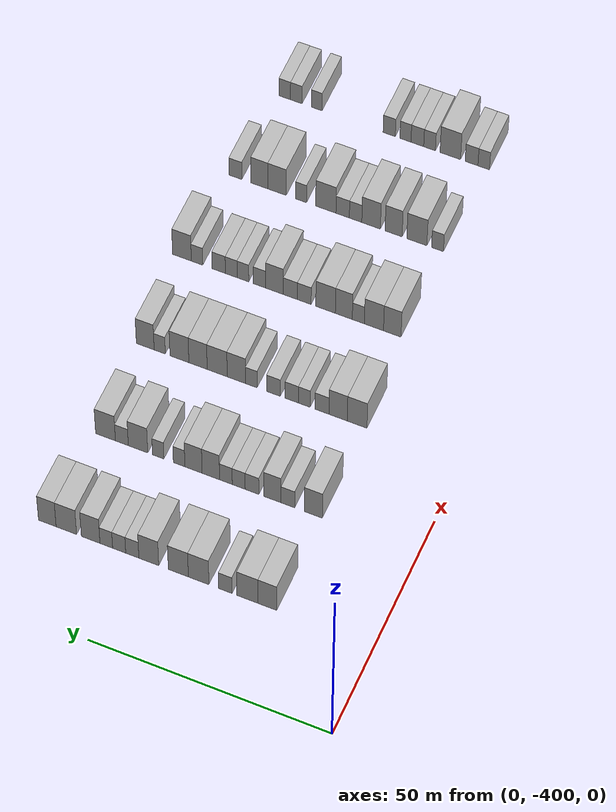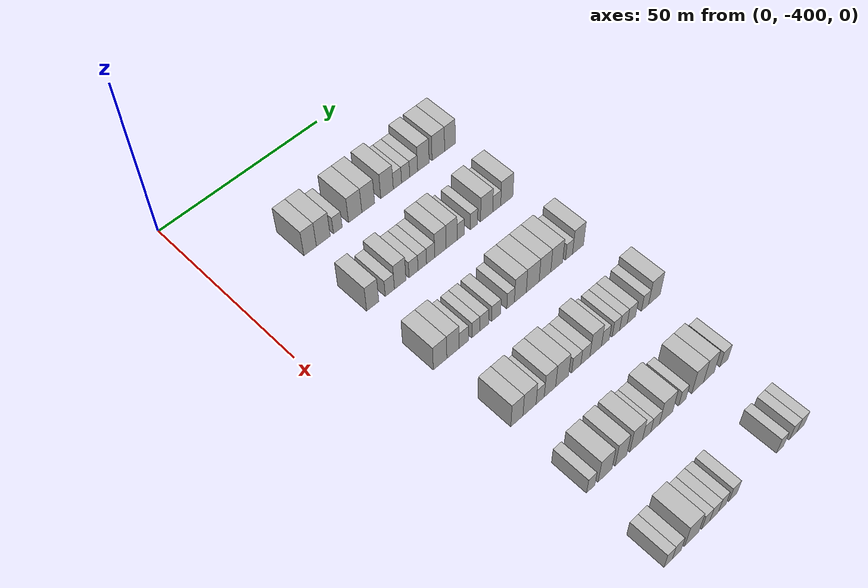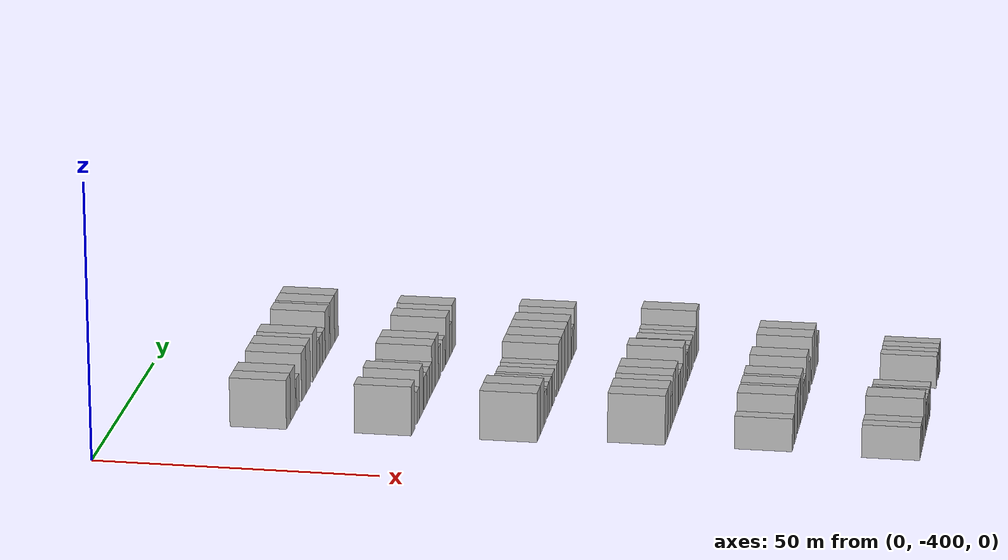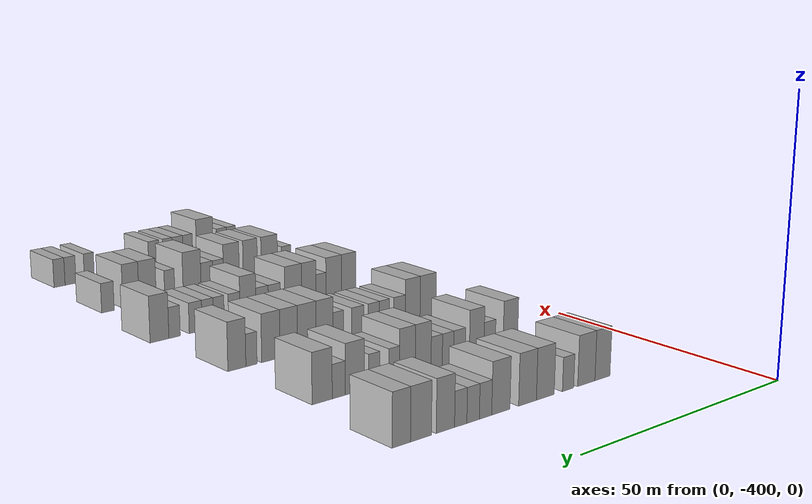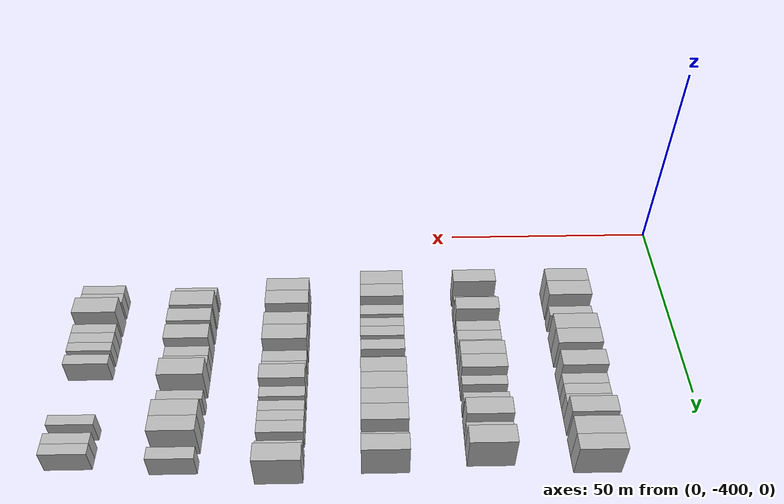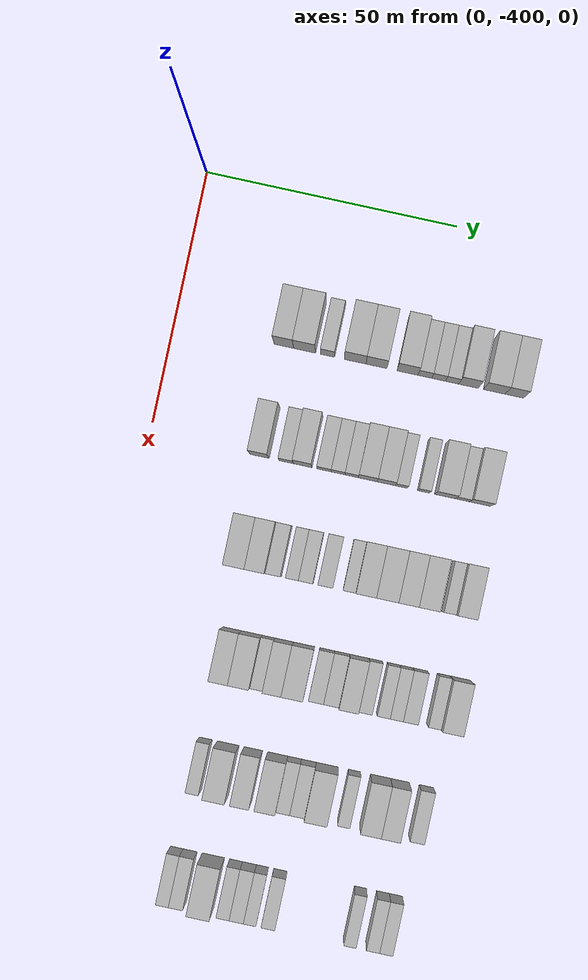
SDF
<sdf version="1.6">
 <world name="default">
  <model name="building_1">
   <static>1</static>
   <pose>25.0000 -378.0547 0 0.000000 0.000000 0.000000</pose>
   <link name="link">
    <pose>0 0 4.50 0 0 0</pose>
    <collision name="collision"><geometry><box><size>10.0000 3.8905 9.0000</size></box></geometry></collision>
    <visual name="visual">
     <cast_shadows>0</cast_shadows>
     <geometry><box><size>10.0000 3.8905 9.0000</size></box></geometry>
     <material>
      <script>
       <uri>model://HANNAS_wall/materials/scripts</uri>
       <uri>model://HANNAS_wall/materials/textures</uri>
       <name>vrc/HANNAS_wall</name>
      </script>
     </material>
    </visual>
   </link>
  </model>
  <model name="building_2">
   <static>1</static>
   <pose>25.0000 -373.9327 0 0.000000 0.000000 0.000000</pose>
   <link name="link">
    <pose>0 0 4.50 0 0 0</pose>
    <collision name="collision"><geometry><box><size>10.0000 4.3536 9.0000</size></box></geometry></collision>
    <visual name="visual">
     <cast_shadows>0</cast_shadows>
     <geometry><box><size>10.0000 4.3536 9.0000</size></box></geometry>
     <material>
      <script>
       <uri>model://HANNAS_wall/materials/scripts</uri>
       <uri>model://HANNAS_wall/materials/textures</uri>
       <name>vrc/HANNAS_wall</name>
      </script>
     </material>
    </visual>
   </link>
  </model>
  <model name="building_3">
   <static>1</static>
   <pose>25.0000 -369.3601 0 0.000000 0.000000 0.000000</pose>
   <link name="link">
    <pose>0 0 3.00 0 0 0</pose>
    <collision name="collision"><geometry><box><size>10.0000 2.7915 6.0000</size></box></geometry></collision>
    <visual name="visual">
     <cast_shadows>0</cast_shadows>
     <geometry><box><size>10.0000 2.7915 6.0000</size></box></geometry>
     <material>
      <script>
       <uri>model://HANNAS_wall/materials/scripts</uri>
       <uri>model://HANNAS_wall/materials/textures</uri>
       <name>vrc/HANNAS_wall</name>
      </script>
     </material>
    </visual>
   </link>
  </model>
  <model name="building_4">
   <static>1</static>
   <pose>25.0000 -363.8232 0 0.000000 0.000000 0.000000</pose>
   <link name="link">
    <pose>0 0 4.50 0 0 0</pose>
    <collision name="collision"><geometry><box><size>10.0000 4.2824 9.0000</size></box></geometry></collision>
    <visual name="visual">
     <cast_shadows>0</cast_shadows>
     <geometry><box><size>10.0000 4.2824 9.0000</size></box></geometry>
     <material>
      <script>
       <uri>model://HANNAS_wall/materials/scripts</uri>
       <uri>model://HANNAS_wall/materials/textures</uri>
       <name>vrc/HANNAS_wall</name>
      </script>
     </material>
    </visual>
   </link>
  </model>
  <model name="building_5">
   <static>1</static>
   <pose>25.0000 -359.5951 0 0.000000 0.000000 0.000000</pose>
   <link name="link">
    <pose>0 0 4.50 0 0 0</pose>
    <collision name="collision"><geometry><box><size>10.0000 4.1738 9.0000</size></box></geometry></collision>
    <visual name="visual">
     <cast_shadows>0</cast_shadows>
     <geometry><box><size>10.0000 4.1738 9.0000</size></box></geometry>
     <material>
      <script>
       <uri>model://HANNAS_wall/materials/scripts</uri>
       <uri>model://HANNAS_wall/materials/textures</uri>
       <name>vrc/HANNAS_wall</name>
      </script>
     </material>
    </visual>
   </link>
  </model>
  <model name="building_6">
   <static>1</static>
   <pose>25.0000 -353.4321 0 0.000000 0.000000 0.000000</pose>
   <link name="link">
    <pose>0 0 4.50 0 0 0</pose>
    <collision name="collision"><geometry><box><size>10.0000 4.1521 9.0000</size></box></geometry></collision>
    <visual name="visual">
     <cast_shadows>0</cast_shadows>
     <geometry><box><size>10.0000 4.1521 9.0000</size></box></geometry>
     <material>
      <script>
       <uri>model://HANNAS_wall/materials/scripts</uri>
       <uri>model://HANNAS_wall/materials/textures</uri>
       <name>vrc/HANNAS_wall</name>
      </script>
     </material>
    </visual>
   </link>
  </model>
  <model name="building_7">
   <static>1</static>
   <pose>25.0000 -349.9801 0 0.000000 0.000000 0.000000</pose>
   <link name="link">
    <pose>0 0 3.00 0 0 0</pose>
    <collision name="collision"><geometry><box><size>10.0000 2.7519 6.0000</size></box></geometry></collision>
    <visual name="visual">
     <cast_shadows>0</cast_shadows>
     <geometry><box><size>10.0000 2.7519 6.0000</size></box></geometry>
     <material>
      <script>
       <uri>model://HANNAS_wall/materials/scripts</uri>
       <uri>model://HANNAS_wall/materials/textures</uri>
       <name>vrc/HANNAS_wall</name>
      </script>
     </material>
    </visual>
   </link>
  </model>
  <model name="building_8">
   <static>1</static>
   <pose>25.0000 -347.2312 0 0.000000 0.000000 0.000000</pose>
   <link name="link">
    <pose>0 0 3.00 0 0 0</pose>
    <collision name="collision"><geometry><box><size>10.0000 2.7460 6.0000</size></box></geometry></collision>
    <visual name="visual">
     <cast_shadows>0</cast_shadows>
     <geometry><box><size>10.0000 2.7460 6.0000</size></box></geometry>
     <material>
      <script>
       <uri>model://HANNAS_wall/materials/scripts</uri>
       <uri>model://HANNAS_wall/materials/textures</uri>
       <name>vrc/HANNAS_wall</name>
      </script>
     </material>
    </visual>
   </link>
  </model>
  <model name="building_9">
   <static>1</static>
   <pose>25.0000 -344.5297 0 0.000000 0.000000 0.000000</pose>
   <link name="link">
    <pose>0 0 3.00 0 0 0</pose>
    <collision name="collision"><geometry><box><size>10.0000 2.6570 6.0000</size></box></geometry></collision>
    <visual name="visual">
     <cast_shadows>0</cast_shadows>
     <geometry><box><size>10.0000 2.6570 6.0000</size></box></geometry>
     <material>
      <script>
       <uri>model://HANNAS_wall/materials/scripts</uri>
       <uri>model://HANNAS_wall/materials/textures</uri>
       <name>vrc/HANNAS_wall</name>
      </script>
     </material>
    </visual>
   </link>
  </model>
  <model name="building_10">
   <static>1</static>
   <pose>25.0000 -341.2466 0 0.000000 0.000000 0.000000</pose>
   <link name="link">
    <pose>0 0 4.50 0 0 0</pose>
    <collision name="collision"><geometry><box><size>10.0000 3.9091 9.0000</size></box></geometry></collision>
    <visual name="visual">
     <cast_shadows>0</cast_shadows>
     <geometry><box><size>10.0000 3.9091 9.0000</size></box></geometry>
     <material>
      <script>
       <uri>model://HANNAS_wall/materials/scripts</uri>
       <uri>model://HANNAS_wall/materials/textures</uri>
       <name>vrc/HANNAS_wall</name>
      </script>
     </material>
    </visual>
   </link>
  </model>
  <model name="building_11">
   <static>1</static>
   <pose>25.0000 -336.1313 0 0.000000 0.000000 0.000000</pose>
   <link name="link">
    <pose>0 0 4.50 0 0 0</pose>
    <collision name="collision"><geometry><box><size>10.0000 4.3216 9.0000</size></box></geometry></collision>
    <visual name="visual">
     <cast_shadows>0</cast_shadows>
     <geometry><box><size>10.0000 4.3216 9.0000</size></box></geometry>
     <material>
      <script>
       <uri>model://HANNAS_wall/materials/scripts</uri>
       <uri>model://HANNAS_wall/materials/textures</uri>
       <name>vrc/HANNAS_wall</name>
      </script>
     </material>
    </visual>
   </link>
  </model>
  <model name="building_12">
   <static>1</static>
   <pose>25.0000 -332.1135 0 0.000000 0.000000 0.000000</pose>
   <link name="link">
    <pose>0 0 4.50 0 0 0</pose>
    <collision name="collision"><geometry><box><size>10.0000 3.7140 9.0000</size></box></geometry></collision>
    <visual name="visual">
     <cast_shadows>0</cast_shadows>
     <geometry><box><size>10.0000 3.7140 9.0000</size></box></geometry>
     <material>
      <script>
       <uri>model://HANNAS_wall/materials/scripts</uri>
       <uri>model://HANNAS_wall/materials/textures</uri>
       <name>vrc/HANNAS_wall</name>
      </script>
     </material>
    </visual>
   </link>
  </model>
  <model name="building_179">
   <static>1</static>
   <pose>47.0000 -378.1136 0 0.000000 0.000000 0.000000</pose>
   <link name="link">
    <pose>0 0 4.50 0 0 0</pose>
    <collision name="collision"><geometry><box><size>10.0000 3.7727 9.0000</size></box></geometry></collision>
    <visual name="visual">
     <cast_shadows>0</cast_shadows>
     <geometry><box><size>10.0000 3.7727 9.0000</size></box></geometry>
     <material>
      <script>
       <uri>model://HANNAS_wall/materials/scripts</uri>
       <uri>model://HANNAS_wall/materials/textures</uri>
       <name>vrc/HANNAS_wall</name>
      </script>
     </material>
    </visual>
   </link>
  </model>
  <model name="building_180">
   <static>1</static>
   <pose>47.0000 -372.7933 0 0.000000 0.000000 0.000000</pose>
   <link name="link">
    <pose>0 0 3.00 0 0 0</pose>
    <collision name="collision"><geometry><box><size>10.0000 2.8680 6.0000</size></box></geometry></collision>
    <visual name="visual">
     <cast_shadows>0</cast_shadows>
     <geometry><box><size>10.0000 2.8680 6.0000</size></box></geometry>
     <material>
      <script>
       <uri>model://HANNAS_wall/materials/scripts</uri>
       <uri>model://HANNAS_wall/materials/textures</uri>
       <name>vrc/HANNAS_wall</name>
      </script>
     </material>
    </visual>
   </link>
  </model>
  <model name="building_181">
   <static>1</static>
   <pose>47.0000 -369.5319 0 0.000000 0.000000 0.000000</pose>
   <link name="link">
    <pose>0 0 4.50 0 0 0</pose>
    <collision name="collision"><geometry><box><size>10.0000 3.6547 9.0000</size></box></geometry></collision>
    <visual name="visual">
     <cast_shadows>0</cast_shadows>
     <geometry><box><size>10.0000 3.6547 9.0000</size></box></geometry>
     <material>
      <script>
       <uri>model://HANNAS_wall/materials/scripts</uri>
       <uri>model://HANNAS_wall/materials/textures</uri>
       <name>vrc/HANNAS_wall</name>
      </script>
     </material>
    </visual>
   </link>
  </model>
  <model name="building_182">
   <static>1</static>
   <pose>47.0000 -365.2719 0 0.000000 0.000000 0.000000</pose>
   <link name="link">
    <pose>0 0 3.00 0 0 0</pose>
    <collision name="collision"><geometry><box><size>10.0000 2.8654 6.0000</size></box></geometry></collision>
    <visual name="visual">
     <cast_shadows>0</cast_shadows>
     <geometry><box><size>10.0000 2.8654 6.0000</size></box></geometry>
     <material>
      <script>
       <uri>model://HANNAS_wall/materials/scripts</uri>
       <uri>model://HANNAS_wall/materials/textures</uri>
       <name>vrc/HANNAS_wall</name>
      </script>
     </material>
    </visual>
   </link>
  </model>
  <model name="building_183">
   <static>1</static>
   <pose>47.0000 -362.4818 0 0.000000 0.000000 0.000000</pose>
   <link name="link">
    <pose>0 0 3.00 0 0 0</pose>
    <collision name="collision"><geometry><box><size>10.0000 2.7148 6.0000</size></box></geometry></collision>
    <visual name="visual">
     <cast_shadows>0</cast_shadows>
     <geometry><box><size>10.0000 2.7148 6.0000</size></box></geometry>
     <material>
      <script>
       <uri>model://HANNAS_wall/materials/scripts</uri>
       <uri>model://HANNAS_wall/materials/textures</uri>
       <name>vrc/HANNAS_wall</name>
      </script>
     </material>
    </visual>
   </link>
  </model>
  <model name="building_184">
   <static>1</static>
   <pose>47.0000 -359.7859 0 0.000000 0.000000 0.000000</pose>
   <link name="link">
    <pose>0 0 3.00 0 0 0</pose>
    <collision name="collision"><geometry><box><size>10.0000 2.6770 6.0000</size></box></geometry></collision>
    <visual name="visual">
     <cast_shadows>0</cast_shadows>
     <geometry><box><size>10.0000 2.6770 6.0000</size></box></geometry>
     <material>
      <script>
       <uri>model://HANNAS_wall/materials/scripts</uri>
       <uri>model://HANNAS_wall/materials/textures</uri>
       <name>vrc/HANNAS_wall</name>
      </script>
     </material>
    </visual>
   </link>
  </model>
  <model name="building_185">
   <static>1</static>
   <pose>47.0000 -356.6103 0 0.000000 0.000000 0.000000</pose>
   <link name="link">
    <pose>0 0 4.50 0 0 0</pose>
    <collision name="collision"><geometry><box><size>10.0000 3.6742 9.0000</size></box></geometry></collision>
    <visual name="visual">
     <cast_shadows>0</cast_shadows>
     <geometry><box><size>10.0000 3.6742 9.0000</size></box></geometry>
     <material>
      <script>
       <uri>model://HANNAS_wall/materials/scripts</uri>
       <uri>model://HANNAS_wall/materials/textures</uri>
       <name>vrc/HANNAS_wall</name>
      </script>
     </material>
    </visual>
   </link>
  </model>
  <model name="building_186">
   <static>1</static>
   <pose>47.0000 -352.9577 0 0.000000 0.000000 0.000000</pose>
   <link name="link">
    <pose>0 0 4.50 0 0 0</pose>
    <collision name="collision"><geometry><box><size>10.0000 3.6311 9.0000</size></box></geometry></collision>
    <visual name="visual">
     <cast_shadows>0</cast_shadows>
     <geometry><box><size>10.0000 3.6311 9.0000</size></box></geometry>
     <material>
      <script>
       <uri>model://HANNAS_wall/materials/scripts</uri>
       <uri>model://HANNAS_wall/materials/textures</uri>
       <name>vrc/HANNAS_wall</name>
      </script>
     </material>
    </visual>
   </link>
  </model>
  <model name="building_187">
   <static>1</static>
   <pose>47.0000 -349.9170 0 0.000000 0.000000 0.000000</pose>
   <link name="link">
    <pose>0 0 3.00 0 0 0</pose>
    <collision name="collision"><geometry><box><size>10.0000 2.4501 6.0000</size></box></geometry></collision>
    <visual name="visual">
     <cast_shadows>0</cast_shadows>
     <geometry><box><size>10.0000 2.4501 6.0000</size></box></geometry>
     <material>
      <script>
       <uri>model://HANNAS_wall/materials/scripts</uri>
       <uri>model://HANNAS_wall/materials/textures</uri>
       <name>vrc/HANNAS_wall</name>
      </script>
     </material>
    </visual>
   </link>
  </model>
  <model name="building_188">
   <static>1</static>
   <pose>47.0000 -345.4833 0 0.000000 0.000000 0.000000</pose>
   <link name="link">
    <pose>0 0 3.00 0 0 0</pose>
    <collision name="collision"><geometry><box><size>10.0000 2.4174 6.0000</size></box></geometry></collision>
    <visual name="visual">
     <cast_shadows>0</cast_shadows>
     <geometry><box><size>10.0000 2.4174 6.0000</size></box></geometry>
     <material>
      <script>
       <uri>model://HANNAS_wall/materials/scripts</uri>
       <uri>model://HANNAS_wall/materials/textures</uri>
       <name>vrc/HANNAS_wall</name>
      </script>
     </material>
    </visual>
   </link>
  </model>
  <model name="building_189">
   <static>1</static>
   <pose>47.0000 -341.2056 0 0.000000 0.000000 0.000000</pose>
   <link name="link">
    <pose>0 0 4.50 0 0 0</pose>
    <collision name="collision"><geometry><box><size>10.0000 4.1380 9.0000</size></box></geometry></collision>
    <visual name="visual">
     <cast_shadows>0</cast_shadows>
     <geometry><box><size>10.0000 4.1380 9.0000</size></box></geometry>
     <material>
      <script>
       <uri>model://HANNAS_wall/materials/scripts</uri>
       <uri>model://HANNAS_wall/materials/textures</uri>
       <name>vrc/HANNAS_wall</name>
      </script>
     </material>
    </visual>
   </link>
  </model>
  <model name="building_190">
   <static>1</static>
   <pose>47.0000 -337.7648 0 0.000000 0.000000 0.000000</pose>
   <link name="link">
    <pose>0 0 3.00 0 0 0</pose>
    <collision name="collision"><geometry><box><size>10.0000 2.7435 6.0000</size></box></geometry></collision>
    <visual name="visual">
     <cast_shadows>0</cast_shadows>
     <geometry><box><size>10.0000 2.7435 6.0000</size></box></geometry>
     <material>
      <script>
       <uri>model://HANNAS_wall/materials/scripts</uri>
       <uri>model://HANNAS_wall/materials/textures</uri>
       <name>vrc/HANNAS_wall</name>
      </script>
     </material>
    </visual>
   </link>
  </model>
  <model name="building_191">
   <static>1</static>
   <pose>47.0000 -334.2877 0 0.000000 0.000000 0.000000</pose>
   <link name="link">
    <pose>0 0 4.50 0 0 0</pose>
    <collision name="collision"><geometry><box><size>10.0000 4.2108 9.0000</size></box></geometry></collision>
    <visual name="visual">
     <cast_shadows>0</cast_shadows>
     <geometry><box><size>10.0000 4.2108 9.0000</size></box></geometry>
     <material>
      <script>
       <uri>model://HANNAS_wall/materials/scripts</uri>
       <uri>model://HANNAS_wall/materials/textures</uri>
       <name>vrc/HANNAS_wall</name>
      </script>
     </material>
    </visual>
   </link>
  </model>
  <model name="building_356">
   <static>1</static>
   <pose>69.0000 -377.9174 0 0.000000 0.000000 0.000000</pose>
   <link name="link">
    <pose>0 0 4.50 0 0 0</pose>
    <collision name="collision"><geometry><box><size>10.0000 4.1652 9.0000</size></box></geometry></collision>
    <visual name="visual">
     <cast_shadows>0</cast_shadows>
     <geometry><box><size>10.0000 4.1652 9.0000</size></box></geometry>
     <material>
      <script>
       <uri>model://HANNAS_wall/materials/scripts</uri>
       <uri>model://HANNAS_wall/materials/textures</uri>
       <name>vrc/HANNAS_wall</name>
      </script>
     </material>
    </visual>
   </link>
  </model>
  <model name="building_357">
   <static>1</static>
   <pose>69.0000 -373.9046 0 0.000000 0.000000 0.000000</pose>
   <link name="link">
    <pose>0 0 4.50 0 0 0</pose>
    <collision name="collision"><geometry><box><size>10.0000 3.8603 9.0000</size></box></geometry></collision>
    <visual name="visual">
     <cast_shadows>0</cast_shadows>
     <geometry><box><size>10.0000 3.8603 9.0000</size></box></geometry>
     <material>
      <script>
       <uri>model://HANNAS_wall/materials/scripts</uri>
       <uri>model://HANNAS_wall/materials/textures</uri>
       <name>vrc/HANNAS_wall</name>
      </script>
     </material>
    </visual>
   </link>
  </model>
  <model name="building_358">
   <static>1</static>
   <pose>69.0000 -370.4958 0 0.000000 0.000000 0.000000</pose>
   <link name="link">
    <pose>0 0 3.00 0 0 0</pose>
    <collision name="collision"><geometry><box><size>10.0000 2.9573 6.0000</size></box></geometry></collision>
    <visual name="visual">
     <cast_shadows>0</cast_shadows>
     <geometry><box><size>10.0000 2.9573 6.0000</size></box></geometry>
     <material>
      <script>
       <uri>model://HANNAS_wall/materials/scripts</uri>
       <uri>model://HANNAS_wall/materials/textures</uri>
       <name>vrc/HANNAS_wall</name>
      </script>
     </material>
    </visual>
   </link>
  </model>
  <model name="building_359">
   <static>1</static>
   <pose>69.0000 -366.7632 0 0.000000 0.000000 0.000000</pose>
   <link name="link">
    <pose>0 0 3.00 0 0 0</pose>
    <collision name="collision"><geometry><box><size>10.0000 2.5081 6.0000</size></box></geometry></collision>
    <visual name="visual">
     <cast_shadows>0</cast_shadows>
     <geometry><box><size>10.0000 2.5081 6.0000</size></box></geometry>
     <material>
      <script>
       <uri>model://HANNAS_wall/materials/scripts</uri>
       <uri>model://HANNAS_wall/materials/textures</uri>
       <name>vrc/HANNAS_wall</name>
      </script>
     </material>
    </visual>
   </link>
  </model>
  <model name="building_360">
   <static>1</static>
   <pose>69.0000 -364.1010 0 0.000000 0.000000 0.000000</pose>
   <link name="link">
    <pose>0 0 3.00 0 0 0</pose>
    <collision name="collision"><geometry><box><size>10.0000 2.8162 6.0000</size></box></geometry></collision>
    <visual name="visual">
     <cast_shadows>0</cast_shadows>
     <geometry><box><size>10.0000 2.8162 6.0000</size></box></geometry>
     <material>
      <script>
       <uri>model://HANNAS_wall/materials/scripts</uri>
       <uri>model://HANNAS_wall/materials/textures</uri>
       <name>vrc/HANNAS_wall</name>
      </script>
     </material>
    </visual>
   </link>
  </model>
  <model name="building_361">
   <static>1</static>
   <pose>69.0000 -360.2262 0 0.000000 0.000000 0.000000</pose>
   <link name="link">
    <pose>0 0 3.00 0 0 0</pose>
    <collision name="collision"><geometry><box><size>10.0000 2.9334 6.0000</size></box></geometry></collision>
    <visual name="visual">
     <cast_shadows>0</cast_shadows>
     <geometry><box><size>10.0000 2.9334 6.0000</size></box></geometry>
     <material>
      <script>
       <uri>model://HANNAS_wall/materials/scripts</uri>
       <uri>model://HANNAS_wall/materials/textures</uri>
       <name>vrc/HANNAS_wall</name>
      </script>
     </material>
    </visual>
   </link>
  </model>
  <model name="building_362">
   <static>1</static>
   <pose>69.0000 -355.5285 0 0.000000 0.000000 0.000000</pose>
   <link name="link">
    <pose>0 0 3.00 0 0 0</pose>
    <collision name="collision"><geometry><box><size>10.0000 2.4621 6.0000</size></box></geometry></collision>
    <visual name="visual">
     <cast_shadows>0</cast_shadows>
     <geometry><box><size>10.0000 2.4621 6.0000</size></box></geometry>
     <material>
      <script>
       <uri>model://HANNAS_wall/materials/scripts</uri>
       <uri>model://HANNAS_wall/materials/textures</uri>
       <name>vrc/HANNAS_wall</name>
      </script>
     </material>
    </visual>
   </link>
  </model>
  <model name="building_363">
   <static>1</static>
   <pose>69.0000 -352.3287 0 0.000000 0.000000 0.000000</pose>
   <link name="link">
    <pose>0 0 4.50 0 0 0</pose>
    <collision name="collision"><geometry><box><size>10.0000 3.9375 9.0000</size></box></geometry></collision>
    <visual name="visual">
     <cast_shadows>0</cast_shadows>
     <geometry><box><size>10.0000 3.9375 9.0000</size></box></geometry>
     <material>
      <script>
       <uri>model://HANNAS_wall/materials/scripts</uri>
       <uri>model://HANNAS_wall/materials/textures</uri>
       <name>vrc/HANNAS_wall</name>
      </script>
     </material>
    </visual>
   </link>
  </model>
  <model name="building_364">
   <static>1</static>
   <pose>69.0000 -348.2176 0 0.000000 0.000000 0.000000</pose>
   <link name="link">
    <pose>0 0 4.50 0 0 0</pose>
    <collision name="collision"><geometry><box><size>10.0000 4.2847 9.0000</size></box></geometry></collision>
    <visual name="visual">
     <cast_shadows>0</cast_shadows>
     <geometry><box><size>10.0000 4.2847 9.0000</size></box></geometry>
     <material>
      <script>
       <uri>model://HANNAS_wall/materials/scripts</uri>
       <uri>model://HANNAS_wall/materials/textures</uri>
       <name>vrc/HANNAS_wall</name>
      </script>
     </material>
    </visual>
   </link>
  </model>
  <model name="building_365">
   <static>1</static>
   <pose>69.0000 -344.1130 0 0.000000 0.000000 0.000000</pose>
   <link name="link">
    <pose>0 0 4.50 0 0 0</pose>
    <collision name="collision"><geometry><box><size>10.0000 3.9245 9.0000</size></box></geometry></collision>
    <visual name="visual">
     <cast_shadows>0</cast_shadows>
     <geometry><box><size>10.0000 3.9245 9.0000</size></box></geometry>
     <material>
      <script>
       <uri>model://HANNAS_wall/materials/scripts</uri>
       <uri>model://HANNAS_wall/materials/textures</uri>
       <name>vrc/HANNAS_wall</name>
      </script>
     </material>
    </visual>
   </link>
  </model>
  <model name="building_366">
   <static>1</static>
   <pose>69.0000 -340.1245 0 0.000000 0.000000 0.000000</pose>
   <link name="link">
    <pose>0 0 4.50 0 0 0</pose>
    <collision name="collision"><geometry><box><size>10.0000 4.0524 9.0000</size></box></geometry></collision>
    <visual name="visual">
     <cast_shadows>0</cast_shadows>
     <geometry><box><size>10.0000 4.0524 9.0000</size></box></geometry>
     <material>
      <script>
       <uri>model://HANNAS_wall/materials/scripts</uri>
       <uri>model://HANNAS_wall/materials/textures</uri>
       <name>vrc/HANNAS_wall</name>
      </script>
     </material>
    </visual>
   </link>
  </model>
  <model name="building_367">
   <static>1</static>
   <pose>69.0000 -335.8952 0 0.000000 0.000000 0.000000</pose>
   <link name="link">
    <pose>0 0 3.00 0 0 0</pose>
    <collision name="collision"><geometry><box><size>10.0000 2.4062 6.0000</size></box></geometry></collision>
    <visual name="visual">
     <cast_shadows>0</cast_shadows>
     <geometry><box><size>10.0000 2.4062 6.0000</size></box></geometry>
     <material>
      <script>
       <uri>model://HANNAS_wall/materials/scripts</uri>
       <uri>model://HANNAS_wall/materials/textures</uri>
       <name>vrc/HANNAS_wall</name>
      </script>
     </material>
    </visual>
   </link>
  </model>
  <model name="building_368">
   <static>1</static>
   <pose>69.0000 -332.7773 0 0.000000 0.000000 0.000000</pose>
   <link name="link">
    <pose>0 0 4.50 0 0 0</pose>
    <collision name="collision"><geometry><box><size>10.0000 3.8297 9.0000</size></box></geometry></collision>
    <visual name="visual">
     <cast_shadows>0</cast_shadows>
     <geometry><box><size>10.0000 3.8297 9.0000</size></box></geometry>
     <material>
      <script>
       <uri>model://HANNAS_wall/materials/scripts</uri>
       <uri>model://HANNAS_wall/materials/textures</uri>
       <name>vrc/HANNAS_wall</name>
      </script>
     </material>
    </visual>
   </link>
  </model>
  <model name="building_543">
   <static>1</static>
   <pose>91.0000 -376.1329 0 0.000000 0.000000 0.000000</pose>
   <link name="link">
    <pose>0 0 4.50 0 0 0</pose>
    <collision name="collision"><geometry><box><size>10.0000 3.7341 9.0000</size></box></geometry></collision>
    <visual name="visual">
     <cast_shadows>0</cast_shadows>
     <geometry><box><size>10.0000 3.7341 9.0000</size></box></geometry>
     <material>
      <script>
       <uri>model://HANNAS_wall/materials/scripts</uri>
       <uri>model://HANNAS_wall/materials/textures</uri>
       <name>vrc/HANNAS_wall</name>
      </script>
     </material>
    </visual>
   </link>
  </model>
  <model name="building_544">
   <static>1</static>
   <pose>91.0000 -372.2165 0 0.000000 0.000000 0.000000</pose>
   <link name="link">
    <pose>0 0 4.50 0 0 0</pose>
    <collision name="collision"><geometry><box><size>10.0000 4.0987 9.0000</size></box></geometry></collision>
    <visual name="visual">
     <cast_shadows>0</cast_shadows>
     <geometry><box><size>10.0000 4.0987 9.0000</size></box></geometry>
     <material>
      <script>
       <uri>model://HANNAS_wall/materials/scripts</uri>
       <uri>model://HANNAS_wall/materials/textures</uri>
       <name>vrc/HANNAS_wall</name>
      </script>
     </material>
    </visual>
   </link>
  </model>
  <model name="building_545">
   <static>1</static>
   <pose>91.0000 -368.8828 0 0.000000 0.000000 0.000000</pose>
   <link name="link">
    <pose>0 0 3.00 0 0 0</pose>
    <collision name="collision"><geometry><box><size>10.0000 2.5688 6.0000</size></box></geometry></collision>
    <visual name="visual">
     <cast_shadows>0</cast_shadows>
     <geometry><box><size>10.0000 2.5688 6.0000</size></box></geometry>
     <material>
      <script>
       <uri>model://HANNAS_wall/materials/scripts</uri>
       <uri>model://HANNAS_wall/materials/textures</uri>
       <name>vrc/HANNAS_wall</name>
      </script>
     </material>
    </visual>
   </link>
  </model>
  <model name="building_546">
   <static>1</static>
   <pose>91.0000 -365.7870 0 0.000000 0.000000 0.000000</pose>
   <link name="link">
    <pose>0 0 4.50 0 0 0</pose>
    <collision name="collision"><geometry><box><size>10.0000 3.6226 9.0000</size></box></geometry></collision>
    <visual name="visual">
     <cast_shadows>0</cast_shadows>
     <geometry><box><size>10.0000 3.6226 9.0000</size></box></geometry>
     <material>
      <script>
       <uri>model://HANNAS_wall/materials/scripts</uri>
       <uri>model://HANNAS_wall/materials/textures</uri>
       <name>vrc/HANNAS_wall</name>
      </script>
     </material>
    </visual>
   </link>
  </model>
  <model name="building_547">
   <static>1</static>
   <pose>91.0000 -361.8752 0 0.000000 0.000000 0.000000</pose>
   <link name="link">
    <pose>0 0 4.50 0 0 0</pose>
    <collision name="collision"><geometry><box><size>10.0000 4.2010 9.0000</size></box></geometry></collision>
    <visual name="visual">
     <cast_shadows>0</cast_shadows>
     <geometry><box><size>10.0000 4.2010 9.0000</size></box></geometry>
     <material>
      <script>
       <uri>model://HANNAS_wall/materials/scripts</uri>
       <uri>model://HANNAS_wall/materials/textures</uri>
       <name>vrc/HANNAS_wall</name>
      </script>
     </material>
    </visual>
   </link>
  </model>
  <model name="building_548">
   <static>1</static>
   <pose>91.0000 -357.2872 0 0.000000 0.000000 0.000000</pose>
   <link name="link">
    <pose>0 0 3.00 0 0 0</pose>
    <collision name="collision"><geometry><box><size>10.0000 2.9749 6.0000</size></box></geometry></collision>
    <visual name="visual">
     <cast_shadows>0</cast_shadows>
     <geometry><box><size>10.0000 2.9749 6.0000</size></box></geometry>
     <material>
      <script>
       <uri>model://HANNAS_wall/materials/scripts</uri>
       <uri>model://HANNAS_wall/materials/textures</uri>
       <name>vrc/HANNAS_wall</name>
      </script>
     </material>
    </visual>
   </link>
  </model>
  <model name="building_549">
   <static>1</static>
   <pose>91.0000 -354.3041 0 0.000000 0.000000 0.000000</pose>
   <link name="link">
    <pose>0 0 3.00 0 0 0</pose>
    <collision name="collision"><geometry><box><size>10.0000 2.9915 6.0000</size></box></geometry></collision>
    <visual name="visual">
     <cast_shadows>0</cast_shadows>
     <geometry><box><size>10.0000 2.9915 6.0000</size></box></geometry>
     <material>
      <script>
       <uri>model://HANNAS_wall/materials/scripts</uri>
       <uri>model://HANNAS_wall/materials/textures</uri>
       <name>vrc/HANNAS_wall</name>
      </script>
     </material>
    </visual>
   </link>
  </model>
  <model name="building_550">
   <static>1</static>
   <pose>91.0000 -350.9098 0 0.000000 0.000000 0.000000</pose>
   <link name="link">
    <pose>0 0 4.50 0 0 0</pose>
    <collision name="collision"><geometry><box><size>10.0000 3.7970 9.0000</size></box></geometry></collision>
    <visual name="visual">
     <cast_shadows>0</cast_shadows>
     <geometry><box><size>10.0000 3.7970 9.0000</size></box></geometry>
     <material>
      <script>
       <uri>model://HANNAS_wall/materials/scripts</uri>
       <uri>model://HANNAS_wall/materials/textures</uri>
       <name>vrc/HANNAS_wall</name>
      </script>
     </material>
    </visual>
   </link>
  </model>
  <model name="building_551">
   <static>1</static>
   <pose>91.0000 -347.6746 0 0.000000 0.000000 0.000000</pose>
   <link name="link">
    <pose>0 0 3.00 0 0 0</pose>
    <collision name="collision"><geometry><box><size>10.0000 2.6735 6.0000</size></box></geometry></collision>
    <visual name="visual">
     <cast_shadows>0</cast_shadows>
     <geometry><box><size>10.0000 2.6735 6.0000</size></box></geometry>
     <material>
      <script>
       <uri>model://HANNAS_wall/materials/scripts</uri>
       <uri>model://HANNAS_wall/materials/textures</uri>
       <name>vrc/HANNAS_wall</name>
      </script>
     </material>
    </visual>
   </link>
  </model>
  <model name="building_552">
   <static>1</static>
   <pose>91.0000 -344.0840 0 0.000000 0.000000 0.000000</pose>
   <link name="link">
    <pose>0 0 3.00 0 0 0</pose>
    <collision name="collision"><geometry><box><size>10.0000 2.5078 6.0000</size></box></geometry></collision>
    <visual name="visual">
     <cast_shadows>0</cast_shadows>
     <geometry><box><size>10.0000 2.5078 6.0000</size></box></geometry>
     <material>
      <script>
       <uri>model://HANNAS_wall/materials/scripts</uri>
       <uri>model://HANNAS_wall/materials/textures</uri>
       <name>vrc/HANNAS_wall</name>
      </script>
     </material>
    </visual>
   </link>
  </model>
  <model name="building_553">
   <static>1</static>
   <pose>91.0000 -341.5491 0 0.000000 0.000000 0.000000</pose>
   <link name="link">
    <pose>0 0 3.00 0 0 0</pose>
    <collision name="collision"><geometry><box><size>10.0000 2.5619 6.0000</size></box></geometry></collision>
    <visual name="visual">
     <cast_shadows>0</cast_shadows>
     <geometry><box><size>10.0000 2.5619 6.0000</size></box></geometry>
     <material>
      <script>
       <uri>model://HANNAS_wall/materials/scripts</uri>
       <uri>model://HANNAS_wall/materials/textures</uri>
       <name>vrc/HANNAS_wall</name>
      </script>
     </material>
    </visual>
   </link>
  </model>
  <model name="building_554">
   <static>1</static>
   <pose>91.0000 -338.8155 0 0.000000 0.000000 0.000000</pose>
   <link name="link">
    <pose>0 0 3.00 0 0 0</pose>
    <collision name="collision"><geometry><box><size>10.0000 2.9054 6.0000</size></box></geometry></collision>
    <visual name="visual">
     <cast_shadows>0</cast_shadows>
     <geometry><box><size>10.0000 2.9054 6.0000</size></box></geometry>
     <material>
      <script>
       <uri>model://HANNAS_wall/materials/scripts</uri>
       <uri>model://HANNAS_wall/materials/textures</uri>
       <name>vrc/HANNAS_wall</name>
      </script>
     </material>
    </visual>
   </link>
  </model>
  <model name="building_555">
   <static>1</static>
   <pose>91.0000 -334.1142 0 0.000000 0.000000 0.000000</pose>
   <link name="link">
    <pose>0 0 3.00 0 0 0</pose>
    <collision name="collision"><geometry><box><size>10.0000 2.4972 6.0000</size></box></geometry></collision>
    <visual name="visual">
     <cast_shadows>0</cast_shadows>
     <geometry><box><size>10.0000 2.4972 6.0000</size></box></geometry>
     <material>
      <script>
       <uri>model://HANNAS_wall/materials/scripts</uri>
       <uri>model://HANNAS_wall/materials/textures</uri>
       <name>vrc/HANNAS_wall</name>
      </script>
     </material>
    </visual>
   </link>
  </model>
  <model name="building_556">
   <static>1</static>
   <pose>91.0000 -330.8290 0 0.000000 0.000000 0.000000</pose>
   <link name="link">
    <pose>0 0 4.50 0 0 0</pose>
    <collision name="collision"><geometry><box><size>10.0000 4.0733 9.0000</size></box></geometry></collision>
    <visual name="visual">
     <cast_shadows>0</cast_shadows>
     <geometry><box><size>10.0000 4.0733 9.0000</size></box></geometry>
     <material>
      <script>
       <uri>model://HANNAS_wall/materials/scripts</uri>
       <uri>model://HANNAS_wall/materials/textures</uri>
       <name>vrc/HANNAS_wall</name>
      </script>
     </material>
    </visual>
   </link>
  </model>
  <model name="building_733">
   <static>1</static>
   <pose>113.0000 -376.7125 0 0.000000 0.000000 0.000000</pose>
   <link name="link">
    <pose>0 0 3.00 0 0 0</pose>
    <collision name="collision"><geometry><box><size>10.0000 2.5750 6.0000</size></box></geometry></collision>
    <visual name="visual">
     <cast_shadows>0</cast_shadows>
     <geometry><box><size>10.0000 2.5750 6.0000</size></box></geometry>
     <material>
      <script>
       <uri>model://HANNAS_wall/materials/scripts</uri>
       <uri>model://HANNAS_wall/materials/textures</uri>
       <name>vrc/HANNAS_wall</name>
      </script>
     </material>
    </visual>
   </link>
  </model>
  <model name="building_734">
   <static>1</static>
   <pose>113.0000 -372.2560 0 0.000000 0.000000 0.000000</pose>
   <link name="link">
    <pose>0 0 4.50 0 0 0</pose>
    <collision name="collision"><geometry><box><size>10.0000 4.3379 9.0000</size></box></geometry></collision>
    <visual name="visual">
     <cast_shadows>0</cast_shadows>
     <geometry><box><size>10.0000 4.3379 9.0000</size></box></geometry>
     <material>
      <script>
       <uri>model://HANNAS_wall/materials/scripts</uri>
       <uri>model://HANNAS_wall/materials/textures</uri>
       <name>vrc/HANNAS_wall</name>
      </script>
     </material>
    </visual>
   </link>
  </model>
  <model name="building_735">
   <static>1</static>
   <pose>113.0000 -367.2381 0 0.000000 0.000000 0.000000</pose>
   <link name="link">
    <pose>0 0 4.50 0 0 0</pose>
    <collision name="collision"><geometry><box><size>10.0000 3.6980 9.0000</size></box></geometry></collision>
    <visual name="visual">
     <cast_shadows>0</cast_shadows>
     <geometry><box><size>10.0000 3.6980 9.0000</size></box></geometry>
     <material>
      <script>
       <uri>model://HANNAS_wall/materials/scripts</uri>
       <uri>model://HANNAS_wall/materials/textures</uri>
       <name>vrc/HANNAS_wall</name>
      </script>
     </material>
    </visual>
   </link>
  </model>
  <model name="building_736">
   <static>1</static>
   <pose>113.0000 -362.3765 0 0.000000 0.000000 0.000000</pose>
   <link name="link">
    <pose>0 0 4.50 0 0 0</pose>
    <collision name="collision"><geometry><box><size>10.0000 4.0253 9.0000</size></box></geometry></collision>
    <visual name="visual">
     <cast_shadows>0</cast_shadows>
     <geometry><box><size>10.0000 4.0253 9.0000</size></box></geometry>
     <material>
      <script>
       <uri>model://HANNAS_wall/materials/scripts</uri>
       <uri>model://HANNAS_wall/materials/textures</uri>
       <name>vrc/HANNAS_wall</name>
      </script>
     </material>
    </visual>
   </link>
  </model>
  <model name="building_737">
   <static>1</static>
   <pose>113.0000 -359.0127 0 0.000000 0.000000 0.000000</pose>
   <link name="link">
    <pose>0 0 3.00 0 0 0</pose>
    <collision name="collision"><geometry><box><size>10.0000 2.7023 6.0000</size></box></geometry></collision>
    <visual name="visual">
     <cast_shadows>0</cast_shadows>
     <geometry><box><size>10.0000 2.7023 6.0000</size></box></geometry>
     <material>
      <script>
       <uri>model://HANNAS_wall/materials/scripts</uri>
       <uri>model://HANNAS_wall/materials/textures</uri>
       <name>vrc/HANNAS_wall</name>
      </script>
     </material>
    </visual>
   </link>
  </model>
  <model name="building_738">
   <static>1</static>
   <pose>113.0000 -356.2060 0 0.000000 0.000000 0.000000</pose>
   <link name="link">
    <pose>0 0 3.00 0 0 0</pose>
    <collision name="collision"><geometry><box><size>10.0000 2.9110 6.0000</size></box></geometry></collision>
    <visual name="visual">
     <cast_shadows>0</cast_shadows>
     <geometry><box><size>10.0000 2.9110 6.0000</size></box></geometry>
     <material>
      <script>
       <uri>model://HANNAS_wall/materials/scripts</uri>
       <uri>model://HANNAS_wall/materials/textures</uri>
       <name>vrc/HANNAS_wall</name>
      </script>
     </material>
    </visual>
   </link>
  </model>
  <model name="building_739">
   <static>1</static>
   <pose>113.0000 -352.5468 0 0.000000 0.000000 0.000000</pose>
   <link name="link">
    <pose>0 0 4.50 0 0 0</pose>
    <collision name="collision"><geometry><box><size>10.0000 4.4074 9.0000</size></box></geometry></collision>
    <visual name="visual">
     <cast_shadows>0</cast_shadows>
     <geometry><box><size>10.0000 4.4074 9.0000</size></box></geometry>
     <material>
      <script>
       <uri>model://HANNAS_wall/materials/scripts</uri>
       <uri>model://HANNAS_wall/materials/textures</uri>
       <name>vrc/HANNAS_wall</name>
      </script>
     </material>
    </visual>
   </link>
  </model>
  <model name="building_740">
   <static>1</static>
   <pose>113.0000 -347.1296 0 0.000000 0.000000 0.000000</pose>
   <link name="link">
    <pose>0 0 3.00 0 0 0</pose>
    <collision name="collision"><geometry><box><size>10.0000 2.4272 6.0000</size></box></geometry></collision>
    <visual name="visual">
     <cast_shadows>0</cast_shadows>
     <geometry><box><size>10.0000 2.4272 6.0000</size></box></geometry>
     <material>
      <script>
       <uri>model://HANNAS_wall/materials/scripts</uri>
       <uri>model://HANNAS_wall/materials/textures</uri>
       <name>vrc/HANNAS_wall</name>
      </script>
     </material>
    </visual>
   </link>
  </model>
  <model name="building_741">
   <static>1</static>
   <pose>113.0000 -341.9064 0 0.000000 0.000000 0.000000</pose>
   <link name="link">
    <pose>0 0 4.50 0 0 0</pose>
    <collision name="collision"><geometry><box><size>10.0000 4.0191 9.0000</size></box></geometry></collision>
    <visual name="visual">
     <cast_shadows>0</cast_shadows>
     <geometry><box><size>10.0000 4.0191 9.0000</size></box></geometry>
     <material>
      <script>
       <uri>model://HANNAS_wall/materials/scripts</uri>
       <uri>model://HANNAS_wall/materials/textures</uri>
       <name>vrc/HANNAS_wall</name>
      </script>
     </material>
    </visual>
   </link>
  </model>
  <model name="building_742">
   <static>1</static>
   <pose>113.0000 -338.0435 0 0.000000 0.000000 0.000000</pose>
   <link name="link">
    <pose>0 0 4.50 0 0 0</pose>
    <collision name="collision"><geometry><box><size>10.0000 3.7068 9.0000</size></box></geometry></collision>
    <visual name="visual">
     <cast_shadows>0</cast_shadows>
     <geometry><box><size>10.0000 3.7068 9.0000</size></box></geometry>
     <material>
      <script>
       <uri>model://HANNAS_wall/materials/scripts</uri>
       <uri>model://HANNAS_wall/materials/textures</uri>
       <name>vrc/HANNAS_wall</name>
      </script>
     </material>
    </visual>
   </link>
  </model>
  <model name="building_743">
   <static>1</static>
   <pose>113.0000 -332.7784 0 0.000000 0.000000 0.000000</pose>
   <link name="link">
    <pose>0 0 3.00 0 0 0</pose>
    <collision name="collision"><geometry><box><size>10.0000 2.8234 6.0000</size></box></geometry></collision>
    <visual name="visual">
     <cast_shadows>0</cast_shadows>
     <geometry><box><size>10.0000 2.8234 6.0000</size></box></geometry>
     <material>
      <script>
       <uri>model://HANNAS_wall/materials/scripts</uri>
       <uri>model://HANNAS_wall/materials/textures</uri>
       <name>vrc/HANNAS_wall</name>
      </script>
     </material>
    </visual>
   </link>
  </model>
  <model name="building_913">
   <static>1</static>
   <pose>135.0000 -377.7415 0 0.000000 0.000000 0.000000</pose>
   <link name="link">
    <pose>0 0 3.00 0 0 0</pose>
    <collision name="collision"><geometry><box><size>10.0000 2.5171 6.0000</size></box></geometry></collision>
    <visual name="visual">
     <cast_shadows>0</cast_shadows>
     <geometry><box><size>10.0000 2.5171 6.0000</size></box></geometry>
     <material>
      <script>
       <uri>model://HANNAS_wall/materials/scripts</uri>
       <uri>model://HANNAS_wall/materials/textures</uri>
       <name>vrc/HANNAS_wall</name>
      </script>
     </material>
    </visual>
   </link>
  </model>
  <model name="building_914">
   <static>1</static>
   <pose>135.0000 -375.0919 0 0.000000 0.000000 0.000000</pose>
   <link name="link">
    <pose>0 0 3.00 0 0 0</pose>
    <collision name="collision"><geometry><box><size>10.0000 2.7820 6.0000</size></box></geometry></collision>
    <visual name="visual">
     <cast_shadows>0</cast_shadows>
     <geometry><box><size>10.0000 2.7820 6.0000</size></box></geometry>
     <material>
      <script>
       <uri>model://HANNAS_wall/materials/scripts</uri>
       <uri>model://HANNAS_wall/materials/textures</uri>
       <name>vrc/HANNAS_wall</name>
      </script>
     </material>
    </visual>
   </link>
  </model>
  <model name="building_915">
   <static>1</static>
   <pose>135.0000 -370.4630 0 0.000000 0.000000 0.000000</pose>
   <link name="link">
    <pose>0 0 4.50 0 0 0</pose>
    <collision name="collision"><geometry><box><size>10.0000 4.4758 9.0000</size></box></geometry></collision>
    <visual name="visual">
     <cast_shadows>0</cast_shadows>
     <geometry><box><size>10.0000 4.4758 9.0000</size></box></geometry>
     <material>
      <script>
       <uri>model://HANNAS_wall/materials/scripts</uri>
       <uri>model://HANNAS_wall/materials/textures</uri>
       <name>vrc/HANNAS_wall</name>
      </script>
     </material>
    </visual>
   </link>
  </model>
  <model name="building_916">
   <static>1</static>
   <pose>135.0000 -365.9459 0 0.000000 0.000000 0.000000</pose>
   <link name="link">
    <pose>0 0 3.00 0 0 0</pose>
    <collision name="collision"><geometry><box><size>10.0000 2.5586 6.0000</size></box></geometry></collision>
    <visual name="visual">
     <cast_shadows>0</cast_shadows>
     <geometry><box><size>10.0000 2.5586 6.0000</size></box></geometry>
     <material>
      <script>
       <uri>model://HANNAS_wall/materials/scripts</uri>
       <uri>model://HANNAS_wall/materials/textures</uri>
       <name>vrc/HANNAS_wall</name>
      </script>
     </material>
    </visual>
   </link>
  </model>
  <model name="building_917">
   <static>1</static>
   <pose>135.0000 -363.2726 0 0.000000 0.000000 0.000000</pose>
   <link name="link">
    <pose>0 0 3.00 0 0 0</pose>
    <collision name="collision"><geometry><box><size>10.0000 2.7880 6.0000</size></box></geometry></collision>
    <visual name="visual">
     <cast_shadows>0</cast_shadows>
     <geometry><box><size>10.0000 2.7880 6.0000</size></box></geometry>
     <material>
      <script>
       <uri>model://HANNAS_wall/materials/scripts</uri>
       <uri>model://HANNAS_wall/materials/textures</uri>
       <name>vrc/HANNAS_wall</name>
      </script>
     </material>
    </visual>
   </link>
  </model>
  <model name="building_918">
   <static>1</static>
   <pose>135.0000 -360.6643 0 0.000000 0.000000 0.000000</pose>
   <link name="link">
    <pose>0 0 3.00 0 0 0</pose>
    <collision name="collision"><geometry><box><size>10.0000 2.4285 6.0000</size></box></geometry></collision>
    <visual name="visual">
     <cast_shadows>0</cast_shadows>
     <geometry><box><size>10.0000 2.4285 6.0000</size></box></geometry>
     <material>
      <script>
       <uri>model://HANNAS_wall/materials/scripts</uri>
       <uri>model://HANNAS_wall/materials/textures</uri>
       <name>vrc/HANNAS_wall</name>
      </script>
     </material>
    </visual>
   </link>
  </model>
  <model name="building_919">
   <static>1</static>
   <pose>135.0000 -357.1096 0 0.000000 0.000000 0.000000</pose>
   <link name="link">
    <pose>0 0 3.00 0 0 0</pose>
    <collision name="collision"><geometry><box><size>10.0000 2.6810 6.0000</size></box></geometry></collision>
    <visual name="visual">
     <cast_shadows>0</cast_shadows>
     <geometry><box><size>10.0000 2.6810 6.0000</size></box></geometry>
     <material>
      <script>
       <uri>model://HANNAS_wall/materials/scripts</uri>
       <uri>model://HANNAS_wall/materials/textures</uri>
       <name>vrc/HANNAS_wall</name>
      </script>
     </material>
    </visual>
   </link>
  </model>
  <model name="building_920">
   <static>1</static>
   <pose>135.0000 -341.1421 0 0.000000 0.000000 0.000000</pose>
   <link name="link">
    <pose>0 0 3.00 0 0 0</pose>
    <collision name="collision"><geometry><box><size>10.0000 2.4180 6.0000</size></box></geometry></collision>
    <visual name="visual">
     <cast_shadows>0</cast_shadows>
     <geometry><box><size>10.0000 2.4180 6.0000</size></box></geometry>
     <material>
      <script>
       <uri>model://HANNAS_wall/materials/scripts</uri>
       <uri>model://HANNAS_wall/materials/textures</uri>
       <name>vrc/HANNAS_wall</name>
      </script>
     </material>
    </visual>
   </link>
  </model>
  <model name="building_921">
   <static>1</static>
   <pose>135.0000 -336.6424 0 0.000000 0.000000 0.000000</pose>
   <link name="link">
    <pose>0 0 3.00 0 0 0</pose>
    <collision name="collision"><geometry><box><size>10.0000 2.5814 6.0000</size></box></geometry></collision>
    <visual name="visual">
     <cast_shadows>0</cast_shadows>
     <geometry><box><size>10.0000 2.5814 6.0000</size></box></geometry>
     <material>
      <script>
       <uri>model://HANNAS_wall/materials/scripts</uri>
       <uri>model://HANNAS_wall/materials/textures</uri>
       <name>vrc/HANNAS_wall</name>
      </script>
     </material>
    </visual>
   </link>
  </model>
  <model name="building_922">
   <static>1</static>
   <pose>135.0000 -334.0632 0 0.000000 0.000000 0.000000</pose>
   <link name="link">
    <pose>0 0 3.00 0 0 0</pose>
    <collision name="collision"><geometry><box><size>10.0000 2.5768 6.0000</size></box></geometry></collision>
    <visual name="visual">
     <cast_shadows>0</cast_shadows>
     <geometry><box><size>10.0000 2.5768 6.0000</size></box></geometry>
     <material>
      <script>
       <uri>model://HANNAS_wall/materials/scripts</uri>
       <uri>model://HANNAS_wall/materials/textures</uri>
       <name>vrc/HANNAS_wall</name>
      </script>
     </material>
    </visual>
   </link>
  </model>
 </world>
</sdf>
